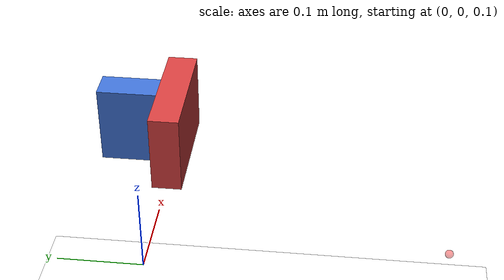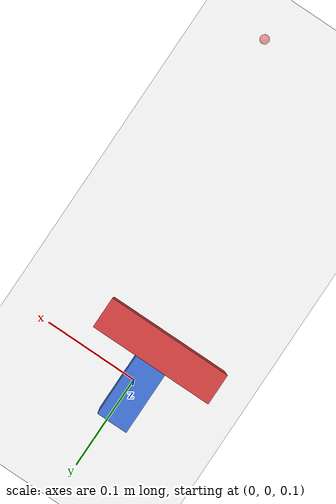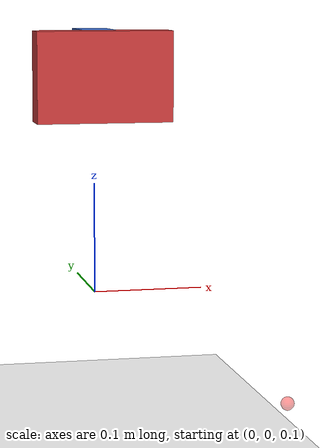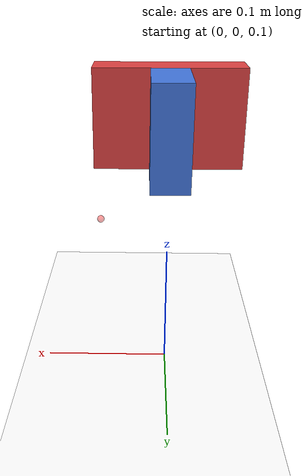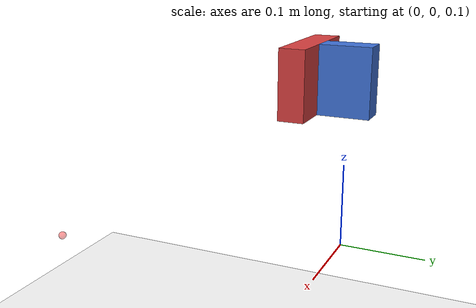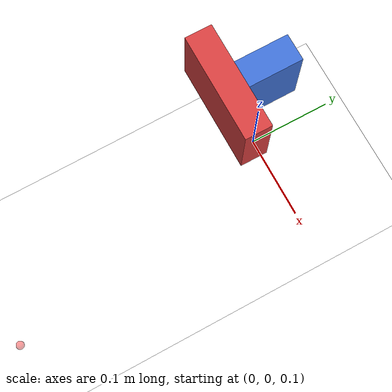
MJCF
<mujoco model="t_block_dual">
  <asset>
    <!-- Checker texture (dark gray / light gray) -->
    <texture name="tex_floor_checker" type="2d" builtin="checker"
             width="512" height="512"
             rgb1="0.90 0.90 0.90" rgb2="0.78 0.78 0.78"/>

    <!-- Material using that texture -->
    <material name="mat_floor_checker"
              texture="tex_floor_checker"
              texrepeat="20 20" texuniform="true"
              reflectance="0.05" shininess="0.2" specular="0.1"
              rgba="1 1 1 1"/>
  </asset>

  <compiler angle="radian"/>
  <option timestep="0.01"/>
  <default>
    <geom friction="0.5 0.005 0.0001" density="1000"/>
  </default>
  <worldbody>
    <light name="scene_light" pos="0 0 1.5" dir="0 0 -1" directional="true"/>
    <geom name="floor" type="plane" size="5 5 0.1" pos="0 0 0" material="mat_floor_checker" rgba="1 1 1 1"/>

    <body name="T_siconos" pos="0 0 0.3">
      <freejoint name="root_siconos"/>
      <!-- Middle stem -->
      <geom name="G_mid_s" type="box"
            size="0.015 0.03 0.04"
            pos="0 0 0"
            rgba="0.25 0.45 0.85 1"
            contype="0" conaffinity="0"/>

      <!-- Bottom bar -->
      <geom name="G_bot_s" type="box"
            size="0.06 0.015 0.04"
            pos="0 -0.045 0"
            rgba="0.85 0.25 0.25 1"
            contype="0" conaffinity="0"/>
    </body>

    <body name="T_mujoco" pos="0 0 0.3">
      <freejoint name="root_mujoco"/>
      <geom name="T_stem_m" type="box" size="0.15 0.15 0.15" pos="0 0 -0.05"
            rgba="0.2 0.4 0.8 0.0"/>

    </body>

    <body name="target_mocap" mocap="true" pos="0.08 -0.35 0.08">

      <geom type="sphere" size="0.005" rgba="1 0 0 0.4" contype="0" conaffinity="0"/>
    </body>

  </worldbody>
</mujoco>
